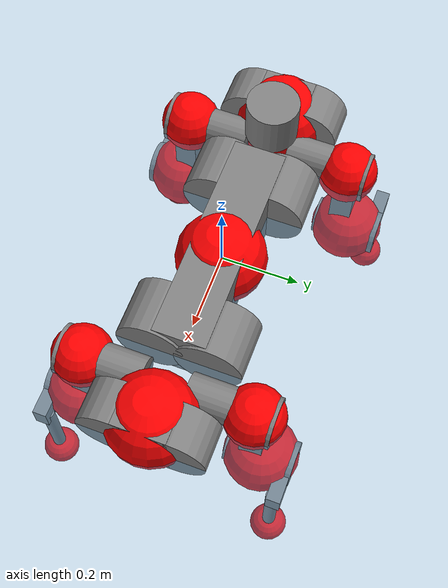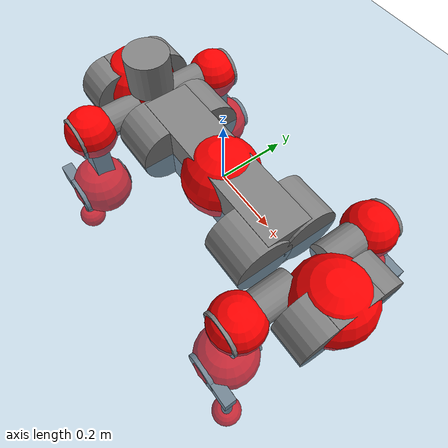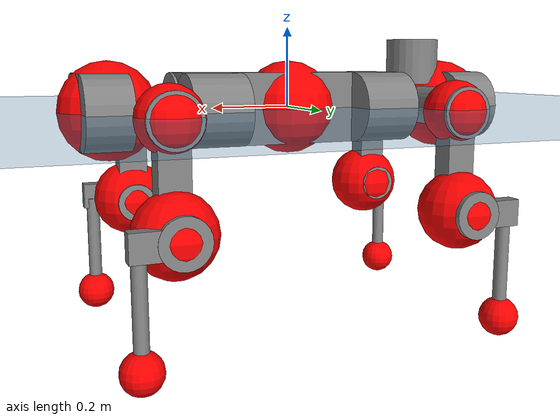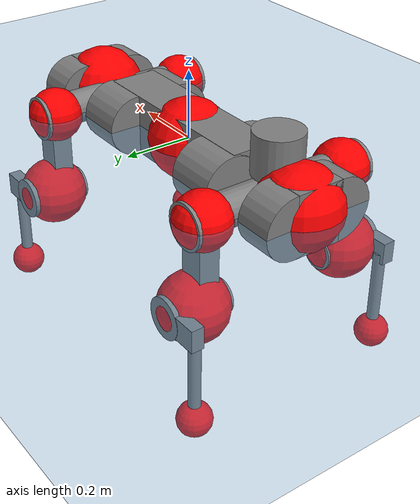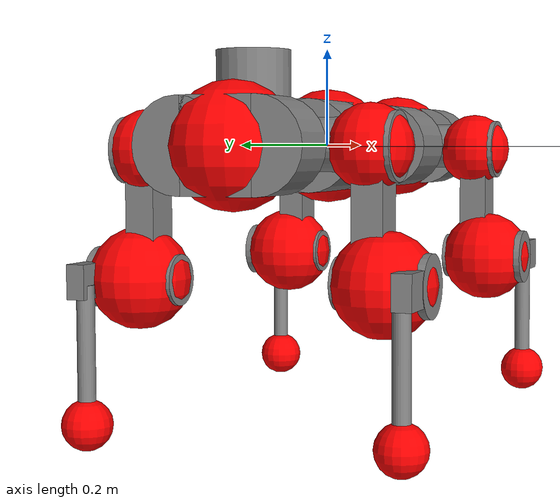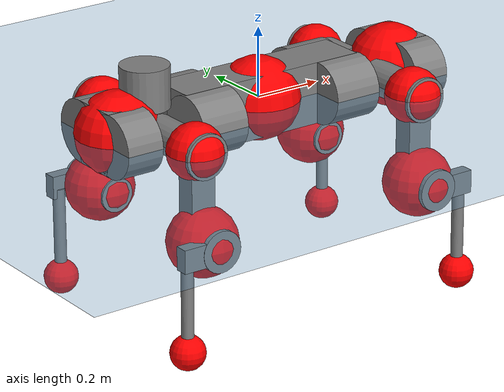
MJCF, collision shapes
<mujoco model="anymal_c">
  <compiler angle="radian" assetdir="assets" balanceinertia="true" inertiafromgeom="false"/>

  <option timestep="0.005" density="1.2" viscosity="2e-05"/>

  <size nkey="1"/>

  <visual>
    <quality shadowsize="8192"/>
    <map shadowclip="0.5"/>
  </visual>

  <default>
    <default class="/">
      <material specular="0" shininess="0.25"/>
      <geom contype="0" conaffinity="0" group="1" solref="-1000 -80"/>
      <site size="0.01 0.005 0.005" group="5"/>
      <general forcelimited="true" forcerange="-80 80" biastype="affine" gainprm="80" biasprm="0 -80 -2"/>
      <default class="anymal_c">
        <joint armature="0.01" damping="0.01" frictionloss="0.1"/>
        <default class="visual">
          <geom type="mesh" group="2"/>
          <default class="visual_zflip"/>
        </default>
        <default class="collision">
          <geom type="cylinder" group="3"/>
          <default class="foot">
            <geom size="0.03 0 0" type="sphere" condim="6" priority="1" friction="0.8 0.02 0.01" solimp="0.015 1 0.03"/>
          </default>
        </default>
      </default>
      <default class="reward_collision_sphere">
        <geom group="5" rgba="1 0 0 1"/>
      </default>
    </default>
  </default>

  <asset>
    <texture type="skybox" colorspace="auto" name="//unnamed_texture_0" builtin="gradient" rgb1="0.95 0.95 0.95" rgb2="0.95 0.95 0.95" width="100" height="600"/>
    <texture type="2d" colorspace="auto" name="texplane" builtin="checker" rgb1="0.345 0.575 0.748" rgb2="0.345 0.575 0.748" markrgb="1 1 1" width="512" height="512"/>
    <texture type="2d" colorspace="linear" name="base" file="base.png"/>
    <texture type="2d" colorspace="linear" name="top_shell" file="top_shell.png"/>
    <texture type="2d" colorspace="linear" name="bottom_shell" file="bottom_shell.png"/>
    <texture type="2d" colorspace="linear" name="remote" file="remote.png"/>
    <texture type="2d" colorspace="linear" name="hatch" file="hatch.png"/>
    <texture type="2d" colorspace="linear" name="handle" file="handle.png"/>
    <texture type="2d" colorspace="linear" name="face" file="face.png"/>
    <texture type="2d" colorspace="linear" name="battery" file="battery.png"/>
    <texture type="2d" colorspace="linear" name="lidar_cage" file="lidar_cage.png"/>
    <texture type="2d" colorspace="linear" name="depth_camera" file="depth_camera.png"/>
    <texture type="2d" colorspace="linear" name="wide_angle_camera" file="wide_angle_camera.png"/>
    <texture type="2d" colorspace="linear" name="lidar" file="lidar.png"/>
    <texture type="2d" colorspace="linear" name="drive" file="drive.png"/>
    <texture type="2d" colorspace="linear" name="hip_l" file="hip_l.png"/>
    <texture type="2d" colorspace="linear" name="shank_l" file="shank_l.png"/>
    <texture type="2d" colorspace="linear" name="foot" file="foot.png"/>
    <texture type="2d" colorspace="linear" name="thigh" file="thigh.png"/>
    <texture type="2d" colorspace="linear" name="shank_r" file="shank_r.png"/>
    <texture type="2d" colorspace="linear" name="hip_r" file="hip_r.png"/>
    <material name="MatPlane" class="/" texture="texplane" texuniform="true" texrepeat="2 2" specular="0.9" shininess="0.5"/>
    <material name="black_plastic" class="/" rgba="0.007 0.007 0.007 1"/>
    <material name="green" class="/" rgba="0.052 0.178 0.033 1"/>
    <material name="red" class="/" rgba="0.178 0.006 0.005 1"/>
    <material name="yellow" class="/" rgba="0.178 0.119 0.006 1"/>
    <material name="lwl" class="/" rgba="0.8 0.8 0.8 1"/>
    <material name="base" class="/" texture="base"/>
    <material name="top_shell" class="/" texture="top_shell"/>
    <material name="bottom_shell" class="/" texture="bottom_shell"/>
    <material name="hip_l" class="/" texture="hip_l"/>
    <material name="thigh" class="/" texture="thigh"/>
    <material name="shank_l" class="/" texture="shank_l"/>
    <material name="foot" class="/" texture="foot"/>
    <material name="hip_r" class="/" texture="hip_r"/>
    <material name="shank" class="/" texture="shank_r"/>
    <material name="hatch" class="/" texture="hatch"/>
    <material name="remote" class="/" texture="remote"/>
    <material name="handle" class="/" texture="handle"/>
    <material name="face" class="/" texture="face"/>
    <material name="depth_camera" class="/" texture="depth_camera"/>
    <material name="wide_angle_camera" class="/" texture="wide_angle_camera"/>
    <material name="battery" class="/" texture="battery"/>
    <material name="lidar_cage" class="/" texture="lidar_cage"/>
    <material name="lidar" class="/" texture="lidar"/>
    <material name="drive" class="/" texture="drive"/>
    <mesh name="base_0" class="/" file="base_0.obj"/>
    <mesh name="base_1" class="/" file="base_1.obj"/>
    <mesh name="base_2" class="/" file="base_2.obj"/>
    <mesh name="base_3" class="/" file="base_3.obj"/>
    <mesh name="base_4" class="/" file="base_4.obj"/>
    <mesh name="base_5" class="/" file="base_5.obj"/>
    <mesh name="top_shell" class="/" file="top_shell.obj"/>
    <mesh name="bottom_shell" class="/" file="bottom_shell.obj"/>
    <mesh name="remote" class="/" file="remote.obj"/>
    <mesh name="handle" class="/" file="handle.obj"/>
    <mesh name="face" class="/" file="face.obj"/>
    <mesh name="wide_angle_camera" class="/" file="wide_angle_camera.obj"/>
    <mesh name="depth_camera" class="/" file="depth_camera.obj"/>
    <mesh name="battery" class="/" file="battery.obj"/>
    <mesh name="lidar_cage" class="/" file="lidar_cage.obj"/>
    <mesh name="lidar" class="/" file="lidar.obj"/>
    <mesh name="drive" class="/" file="drive.obj"/>
    <mesh name="hip_l" class="/" file="hip_l.obj"/>
    <mesh name="thigh" class="/" file="thigh.obj"/>
    <mesh name="shank_l" class="/" file="shank_l.obj"/>
    <mesh name="foot" class="/" file="foot.obj"/>
    <mesh name="hip_r" class="/" file="hip_r.obj"/>
    <mesh name="hatch" class="/" file="hatch.obj"/>
    <mesh name="shank_r" class="/" file="shank_r.obj"/>
  </asset>

  <worldbody>
    <geom name="floor" class="/" size="100 100 0.125" type="plane" group="0" material="MatPlane"/>
    <light name="toplight_shadow" class="/" pos="0 0 5" dir="0.0990148 0.0990148 -0.990148" type="directional" ambient="0.04 0.04 0.04" diffuse="0.55 0.55 0.55" specular="0.12 0.12 0.12"/>
    <light name="toplight_fill" class="/" pos="0 0 5" dir="0.0990148 0.0990148 -0.990148" type="directional" castshadow="false" ambient="0.04 0.04 0.04" diffuse="0.3 0.3 0.3" specular="0.08 0.08 0.08"/>
    <body name="trunk" childclass="anymal_c" pos="-0.00238697 -0.00266238 -0.000759951" quat="0.999999 -0.00113253 0.000224097 -0.000808521">
      <inertial pos="0.00037946 0.00108699 0.0434409" quat="0.5026 0.500387 0.4977 0.499299" mass="18.0543" diaginertia="0.696553 0.856657 0.107147"/>
      <joint name="//unnamed_joint_0" type="free" armature="0" damping="0" frictionloss="0"/>
      <geom name="//unnamed_geom_1" class="visual" material="green" mesh="base_0"/>
      <geom name="//unnamed_geom_2" class="visual" material="yellow" mesh="base_1"/>
      <geom name="//unnamed_geom_3" class="visual" material="red" mesh="base_2"/>
      <geom name="//unnamed_geom_4" class="visual" material="black_plastic" mesh="base_3"/>
      <geom name="//unnamed_geom_5" class="visual" material="lwl" mesh="base_4"/>
      <geom name="//unnamed_geom_6" class="visual" material="base" mesh="base_5"/>
      <geom name="trunk_1" class="collision" size="0.284986 0.0687896 0.0884438" type="box"/>
      <geom name="trunk_2" class="collision" size="0.0884438 0.0712464" pos="0.221252 0.0747574 0" quat="0.707107 0 0.707107 0"/>
      <geom name="trunk_3" class="collision" size="0.0884438 0.0712464" pos="-0.221252 0.0747574 0" quat="0.707107 0 0.707107 0"/>
      <geom name="trunk_4" class="collision" size="0.0884438 0.0712464" pos="0.221252 -0.0747574 0" quat="0.707107 0 0.707107 0"/>
      <geom name="trunk_5" class="collision" size="0.0884438 0.0712464" pos="-0.221252 -0.0747574 0" quat="0.707107 0 0.707107 0"/>
      <geom name="//unnamed_geom_12" class="visual" material="top_shell" mesh="top_shell"/>
      <geom name="//unnamed_geom_13" class="visual" material="bottom_shell" mesh="bottom_shell"/>
      <geom name="//unnamed_geom_14" class="visual" material="remote" mesh="remote"/>
      <geom name="//unnamed_geom_15" class="visual" material="handle" mesh="handle"/>
      <geom name="//unnamed_geom_16" class="visual" pos="0.42165 0 0" quat="1 0 0 0" material="face" mesh="face"/>
      <geom name="trunk_6" class="collision" size="0.054049 0.0687896 0.0884438" pos="0.477598 0 0" type="box"/>
      <geom name="//unnamed_geom_18" class="collision" size="0.0884438 0.054049" pos="0.477598 0.0747574 0" quat="0.707107 0 0.707107 0"/>
      <geom name="//unnamed_geom_19" class="collision" size="0.0884438 0.054049" pos="0.477598 -0.0747574 0" quat="0.707107 0 0.707107 0"/>
      <geom name="//unnamed_geom_20" class="visual" pos="0.469606 0 -0.0240242" quat="0.965926 0 0.258819 0" material="depth_camera" mesh="depth_camera"/>
      <geom name="//unnamed_geom_21" class="visual" pos="0.521849 0 0.0129178" material="wide_angle_camera" mesh="wide_angle_camera"/>
      <geom name="//unnamed_geom_22" class="visual_zflip" pos="-0.42165 0 0" quat="0 0 0 1" material="face" mesh="face"/>
      <geom name="trunk_7" class="collision" size="0.054049 0.0687896 0.0884438" pos="-0.477598 0 0" quat="0 0 0 1" type="box"/>
      <geom name="//unnamed_geom_24" class="collision" size="0.0884438 0.054049" pos="-0.477598 -0.0747574 0" quat="0 -0.707107 0 0.707107"/>
      <geom name="//unnamed_geom_25" class="collision" size="0.0884438 0.054049" pos="-0.477598 0.0747574 0" quat="0 -0.707107 0 0.707107"/>
      <geom name="//unnamed_geom_26" class="visual" pos="-0.469606 0 -0.0240242" quat="0 -0.258819 0 0.965926" material="depth_camera" mesh="depth_camera"/>
      <geom name="//unnamed_geom_27" class="visual_zflip" pos="-0.521849 0 0.0129178" quat="0 0 0 1" material="wide_angle_camera" mesh="wide_angle_camera"/>
      <geom name="//unnamed_geom_28" class="visual" material="battery" mesh="battery"/>
      <geom name="//unnamed_geom_29" class="visual" pos="0 0.0823155 0.0262406" quat="0.683013 -0.183013 0.183013 0.683013" material="depth_camera" mesh="depth_camera"/>
      <geom name="//unnamed_geom_30" class="visual" pos="0 -0.0823155 0.0262406" quat="0.683013 0.183013 0.183013 -0.683013" material="depth_camera" mesh="depth_camera"/>
      <geom name="//unnamed_geom_31" class="visual" pos="-0.370279 0 0.0634243" quat="1 0 0 0" material="lidar_cage" mesh="lidar_cage"/>
      <geom name="trunk_8" class="collision" size="0.0687896 0.0589625" pos="-0.370279 0 0.115199"/>
      <geom name="//unnamed_geom_33" class="visual" pos="-0.370279 1.99243e-05 0.122707" quat="0.707107 0 0 -0.707107" material="lidar" mesh="lidar"/>
      <geom name="//unnamed_geom_34" class="visual" pos="0.305073 0.110995 3.5371e-09" quat="0.258819 0.965926 0 0" material="drive" mesh="drive"/>
      <geom name="//unnamed_geom_35" class="visual" pos="0.305073 -0.110995 -3.5371e-09" quat="0.258819 -0.965926 0 0" material="drive" mesh="drive"/>
      <geom name="//unnamed_geom_36" class="visual" pos="-0.305073 0.110995 -3.5371e-09" quat="0 0 0.965926 -0.258819" material="drive" mesh="drive"/>
      <geom name="//unnamed_geom_37" class="visual" pos="-0.305073 -0.110995 3.5371e-09" quat="0 0 -0.965926 -0.258819" material="drive" mesh="drive"/>
      <geom name="//unnamed_geom_38" class="visual" pos="0.118001 0 0.0629928" quat="1 0 0 0" material="hatch" mesh="hatch"/>
      <geom name="//unnamed_geom_39" class="reward_collision_sphere" size="0.117925"/>
      <geom name="//unnamed_geom_40" class="reward_collision_sphere" size="0.117925" pos="0.457762 0 0"/>
      <geom name="//unnamed_geom_41" class="reward_collision_sphere" size="0.117925" pos="-0.457762 0 0"/>
      <site name="imu" pos="0.254964 0.0114189 0.0417339" size="0.00982709"/>
      <camera name="track" pos="0 -2.13593 0" quat="0.707107 0.707107 0 0" mode="trackcom"/>
      <camera name="ego_camera" pos="0.457762 0 -0.0345166" quat="-0.5 -0.5 0.5 0.5"/>
      <body name="LF_HIP" pos="0.303913 0.109377 0.00161273" quat="0.257863 0.966182 -0.000349689 -7.85869e-05">
        <inertial pos="0.0555895 -0.0177621 -0.00885959" quat="-0.12823 0.709617 -0.134603 0.67962" mass="2.76516" diaginertia="0.00668719 0.00684179 0.00166844"/>
        <joint name="LF_HAA" pos="0 0 0" axis="0.999996 7.72339e-05 0.00279786" range="-0.712439 0.434675" armature="0.0112166" damping="0" frictionloss="0.103276"/>
        <geom name="//unnamed_geom_42" class="visual" pos="0 0.000208072 -3.41756e-05" quat="0.258819 -0.965926 0 0" material="hip_l" mesh="hip_l"/>
        <geom name="//unnamed_geom_43" class="visual" pos="0.0609332 -0.0744284 -0.0414546" quat="0.183013 -0.683013 0.683013 0.183013" material="drive" mesh="drive"/>
        <geom name="//unnamed_geom_44" class="collision" size="0.0491354 0.0687896" pos="0.0609332 -0.0127726 -0.00595843" quat="-0.353553 -0.612372 0.612372 -0.353553"/>
        <body name="LF_THIGH" pos="0.0616 -0.0792652 -0.0357074" quat="0.182912 -0.683027 0.683024 0.183019">
          <inertial pos="0.0338533 8.86665e-05 -0.209246" quat="0.993055 -0.00342218 -0.0807357 0.08551" mass="2.94134" diaginertia="0.0333387 0.0414228 0.00198985"/>
          <joint name="LF_HFE" pos="0 0 0" axis="0.999966 -0.00755048 -0.00327256" stiffness="0.00868741" range="-3.19969 3.19387" armature="0.0112466" damping="0" frictionloss="0.106334"/>
          <geom name="//unnamed_geom_45" class="visual" pos="-0.00100902 -1.58997e-06 0" quat="0.707107 0 0 -0.707107" material="thigh" mesh="thigh"/>
          <geom name="//unnamed_geom_46" class="collision" size="0.0638761 0.0393084" pos="0.0406899 0 0" quat="0.5 0.5 -0.5 -0.5"/>
          <geom name="//unnamed_geom_47" class="collision" size="0.0368516 0.0294813 0.138871" pos="0.0305175 0 -0.121942" quat="0.707107 0 0 -0.707107" type="box"/>
          <geom name="//unnamed_geom_48" class="visual" pos="0.10203 0 -0.245931" quat="1 0 0 0" material="drive" mesh="drive"/>
          <geom name="//unnamed_geom_49" class="collision" size="0.0491354 0.0687896" pos="0.0308226 0 -0.245931" quat="0.707107 0 0.707107 0"/>
          <geom name="//unnamed_geom_50" class="reward_collision_sphere" size="0.0786167" pos="0.0254312 0 0"/>
          <body name="LF_SHANK" pos="0.102208 -0.00107384 -0.246383" quat="0.999999 0.000716381 -0.000689078 -0.000653962">
            <inertial pos="0.00776098 -0.0635338 -0.0724175" quat="0.993954 -0.104715 0.000675979 -0.0330028" mass="0.555416" diaginertia="0.0110301 0.0130836 0.000517486"/>
            <joint name="LF_KFE" pos="0 0 0" axis="0.999998 0.00185729 0.00111543" range="-3.12723 3.08356" armature="0.00878046" damping="0.00960161" frictionloss="0.103438"/>
            <geom name="//unnamed_geom_51" class="visual" pos="-0.000329018 -0.00175434 0" quat="0.707107 0 0 -0.707107" material="shank_l" mesh="shank_l"/>
            <geom name="LF_kfe_act" class="collision" size="0.0589625 0.0196542" pos="0.020345 0 0" quat="0.5 0.5 -0.5 -0.5"/>
            <geom name="//unnamed_geom_53" class="collision" size="0.0565048 0.0331664 0.0186715" pos="0.020345 -0.0614068 0" quat="0.5 0.5 -0.5 -0.5" type="box"/>
            <geom name="//unnamed_geom_54" class="visual" pos="0.0132752 -0.0944927 -0.291639" quat="0.382683 0 0 -0.92388" material="foot" mesh="foot"/>
            <geom name="LF_calf" class="collision" size="0.0171974 0.13881" pos="0.0132751 -0.0939273 -0.14582" quat="0.707107 0 0 -0.707107"/>
            <geom name="LF_foot" class="foot" size="0.0330094" pos="0.0132751 -0.0939273 -0.272224" quat="0.707107 0 0 -0.707107"/>
            <geom name="//unnamed_geom_57" class="reward_collision_sphere" size="0.0982709" pos="-0.0508624 0 0"/>
            <geom name="//unnamed_geom_58" class="reward_collision_sphere" size="0.0491354" pos="0.0132751 -0.0939273 -0.272224"/>
            <site name="LF_foot" class="foot" pos="0.0132751 -0.0939273 -0.272224" quat="0.707107 0 0 -0.707107" size="0.00982709"/>
          </body>
        </body>
      </body>
      <body name="RF_HIP" pos="0.305387 -0.108853 0.000974938" quat="0.25868 -0.965963 -0.000162932 0.000380021">
        <inertial pos="0.0605644 0.0166625 -0.00744049" quat="0.135227 0.679074 0.128011 0.71006" mass="2.77994" diaginertia="0.00668095 0.00713403 0.00157715"/>
        <joint name="RF_HAA" pos="0 0 0" axis="1 0.000258497 -0.000893672" range="-0.451819 0.732564" armature="0.00878053" damping="0.0107404" frictionloss="0.109695"/>
        <geom name="//unnamed_geom_59" class="visual" pos="0 -0.00020807 -3.41755e-05" quat="0.258819 0.965926 0 0" material="hip_r" mesh="hip_r"/>
        <geom name="//unnamed_geom_60" class="visual" pos="0.0609332 0.0744284 -0.0414546" quat="0.183013 0.683013 0.683013 -0.183013" material="drive" mesh="drive"/>
        <geom name="//unnamed_geom_61" class="collision" size="0.0491354 0.0687896" pos="0.0609332 0.0127726 -0.00595843" quat="-0.353553 0.612372 0.612372 0.353553"/>
        <body name="RF_THIGH" pos="0.0598543 0.0773414 -0.0338225" quat="0.182542 0.682951 0.682897 -0.18414">
          <inertial pos="0.0287251 -0.00227494 -0.211321" quat="0.992401 -0.00862485 -0.0845931 0.0889374" mass="2.82308" diaginertia="0.0329071 0.0406702 0.00191946"/>
          <joint name="RF_HFE" pos="0 0 0" axis="0.999999 -0.00123348 0.000183756" stiffness="0.00836449" range="-3.14117 3.12896" armature="0.00988261" damping="0.0114338" frictionloss="0.103553"/>
          <geom name="//unnamed_geom_62" class="visual" pos="-0.00100902 -1.58997e-06 0" quat="0.707107 0 0 -0.707107" material="thigh" mesh="thigh"/>
          <geom name="//unnamed_geom_63" class="collision" size="0.0638761 0.0393084" pos="0.0406899 0 0" quat="0.5 0.5 0.5 0.5"/>
          <geom name="//unnamed_geom_64" class="collision" size="0.0368516 0.0294813 0.138871" pos="0.0305175 0 -0.121942" quat="0.707107 0 0 0.707107" type="box"/>
          <geom name="//unnamed_geom_65" class="visual" pos="0.10203 0 -0.245931" quat="1 0 0 0" material="drive" mesh="drive"/>
          <geom name="//unnamed_geom_66" class="collision" size="0.0491354 0.0687896" pos="0.0308226 0 -0.245931" quat="0.707107 0 0.707107 0"/>
          <geom name="//unnamed_geom_67" class="reward_collision_sphere" size="0.0786167" pos="0.0254312 0 0"/>
          <body name="RF_SHANK" pos="0.104268 -0.000533731 -0.244753" quat="1 -2.23342e-06 -3.29345e-05 -9.32103e-06">
            <inertial pos="0.00770044 0.0657433 -0.0690716" quat="0.992882 0.116846 -0.00532712 0.0224599" mass="0.57504" diaginertia="0.0118597 0.0128342 0.00055453"/>
            <joint name="RF_KFE" pos="0 0 0" axis="0.9999 0.00459707 -0.013408" range="-3.12062 3.15524" armature="0.0096666" damping="0.0182536" frictionloss="0.0955594"/>
            <geom name="//unnamed_geom_68" class="visual" pos="-0.000329016 0.00175434 0" quat="0.707107 0 0 0.707107" material="shank" mesh="shank_r"/>
            <geom name="RF_kfe_act" class="collision" size="0.0589625 0.0196542" pos="0.020345 0 0" quat="0.5 0.5 0.5 0.5"/>
            <geom name="//unnamed_geom_70" class="collision" size="0.0565048 0.0331664 0.0186715" pos="0.020345 0.0614068 0" quat="0.5 0.5 0.5 0.5" type="box"/>
            <geom name="//unnamed_geom_71" class="visual" pos="0.013275 0.0944927 -0.291639" quat="0.382683 0 0 0.92388" material="foot" mesh="foot"/>
            <geom name="RF_calf" class="collision" size="0.0171974 0.13881" pos="0.0132751 0.0939273 -0.14582" quat="0.707107 0 0 0.707107"/>
            <geom name="RF_foot" class="foot" size="0.0279913" pos="0.0132751 0.0939273 -0.272224" quat="0.707107 0 0 0.707107"/>
            <geom name="//unnamed_geom_74" class="reward_collision_sphere" size="0.0982709" pos="-0.0508624 0 0"/>
            <geom name="//unnamed_geom_75" class="reward_collision_sphere" size="0.0491354" pos="0.0132751 0.0939273 -0.272224"/>
            <site name="RF_foot" class="foot" pos="0.0132751 0.0939273 -0.272224" quat="0.707107 0 0 0.707107" size="0.00982709"/>
          </body>
        </body>
      </body>
      <body name="LH_HIP" pos="-0.303675 0.110285 0.00245857" quat="-0.00021491 0.000464924 0.966091 -0.258201">
        <inertial pos="0.0601239 0.016923 -0.00800263" quat="0.135111 0.679579 0.128004 0.709601" mass="2.61126" diaginertia="0.00636417 0.00706418 0.00158278"/>
        <joint name="LH_HAA" pos="0 0 0" axis="0.999982 -0.00565045 0.00200851" stiffness="0.00387786" range="-0.474342 0.700461" armature="0.00986611" damping="0.00977997" frictionloss="0.10173"/>
        <geom name="//unnamed_geom_76" class="visual" pos="0 -0.00020807 -3.41755e-05" quat="-0.258819 -0.965926 0 0" material="hip_r" mesh="hip_r"/>
        <geom name="//unnamed_geom_77" class="visual" pos="0.0609332 0.0744284 -0.0414546" quat="0.183013 0.683013 0.683013 -0.183013" material="drive" mesh="drive"/>
        <geom name="//unnamed_geom_78" class="collision" size="0.0491354 0.0687896" pos="0.0609332 0.0127726 -0.00595843" quat="-0.353553 0.612372 0.612372 0.353553"/>
        <body name="LH_THIGH" pos="0.0578778 0.0790385 -0.0335959" quat="0.182523 0.682654 0.683688 -0.182316">
          <inertial pos="0.0309037 0.000906733 -0.210803" quat="0.991912 0.00601301 -0.0883216 0.0909647" mass="2.81202" diaginertia="0.0328495 0.0400728 0.00200741"/>
          <joint name="LH_HFE" pos="0 0 0" axis="0.999996 0.00198566 0.00202289" stiffness="4.31675e-05" range="-3.12027 3.12805" armature="0.00869021" damping="0" frictionloss="0.096436"/>
          <geom name="//unnamed_geom_79" class="visual" pos="-0.00100902 -1.58997e-06 0" quat="0.707107 0 0 -0.707107" material="thigh" mesh="thigh"/>
          <geom name="//unnamed_geom_80" class="collision" size="0.0638761 0.0393084" pos="0.0406899 0 0" quat="0.5 0.5 -0.5 -0.5"/>
          <geom name="//unnamed_geom_81" class="collision" size="0.0368516 0.0294813 0.138871" pos="0.0305175 0 -0.121942" quat="0.707107 0 0 -0.707107" type="box"/>
          <geom name="//unnamed_geom_82" class="visual" pos="0.10203 0 -0.245931" quat="1 0 0 0" material="drive" mesh="drive"/>
          <geom name="//unnamed_geom_83" class="collision" size="0.0491354 0.0687896" pos="0.0308226 0 -0.245931" quat="0.707107 0 0.707107 0"/>
          <geom name="//unnamed_geom_84" class="reward_collision_sphere" size="0.0786167" pos="0.0254312 0 0"/>
          <body name="LH_SHANK" pos="0.102291 -0.00137804 -0.245079" quat="1 -1.05495e-06 -1.96489e-06 -1.4113e-06">
            <inertial pos="0.0056971 0.0654807 -0.0674391" quat="0.993089 0.114544 -0.000253122 0.0255613" mass="0.556903" diaginertia="0.0111103 0.0129206 0.000539104"/>
            <joint name="LH_KFE" pos="0 0 0" axis="1 -0.000718014 0.000122762" stiffness="0.00297822" range="-3.13608 3.14127" armature="0.00933986" damping="0" frictionloss="0.0962134"/>
            <geom name="//unnamed_geom_85" class="visual" pos="-0.000329016 0.00175434 0" quat="-0.707107 0 0 -0.707107" material="shank" mesh="shank_r"/>
            <geom name="LH_kfe_act" class="collision" size="0.0589625 0.0196542" pos="0.020345 0 0" quat="0.5 0.5 -0.5 -0.5"/>
            <geom name="//unnamed_geom_87" class="collision" size="0.0565048 0.0331664 0.0186715" pos="0.020345 0.0614068 0" quat="0.5 0.5 -0.5 -0.5" type="box"/>
            <geom name="//unnamed_geom_88" class="visual" pos="0.013275 0.0944927 -0.291639" quat="-0.382683 0 0 -0.92388" material="foot" mesh="foot"/>
            <geom name="LH_calf" class="collision" size="0.0171974 0.13881" pos="0.0132751 0.0939273 -0.14582" quat="0.707107 0 0 -0.707107"/>
            <geom name="LH_foot" class="foot" size="0.0332378" pos="0.0132751 0.0939273 -0.272224" quat="0.707107 0 0 -0.707107"/>
            <geom name="//unnamed_geom_91" class="reward_collision_sphere" size="0.0982709" pos="-0.0508624 0 0"/>
            <geom name="//unnamed_geom_92" class="reward_collision_sphere" size="0.0491354" pos="0.0132751 0.0939273 -0.272224"/>
            <site name="LH_foot" class="foot" pos="0.0132751 0.0939273 -0.272224" quat="0.707107 0 0 -0.707107" size="0.00982709"/>
          </body>
        </body>
      </body>
      <body name="RH_HIP" pos="-0.304823 -0.113208 0.00294441" quat="0.00120017 -8.5006e-05 -0.966133 -0.258043">
        <inertial pos="0.0577538 -0.0136195 -0.00754348" quat="-0.126528 0.710357 -0.122306 0.681488" mass="2.62782" diaginertia="0.00650921 0.00699326 0.00154773"/>
        <joint name="RH_HAA" pos="0 0 0" axis="0.999984 -0.00125132 0.00544537" stiffness="0.00853972" range="-0.744271 0.503614" armature="0.011145" damping="0.0184093" frictionloss="0.0847394"/>
        <geom name="//unnamed_geom_93" class="visual" pos="0 0.000208072 -3.41756e-05" quat="-0.258819 0.965926 0 0" material="hip_l" mesh="hip_l"/>
        <geom name="//unnamed_geom_94" class="visual" pos="0.0609332 -0.0744284 -0.0414546" quat="-0.183013 0.683013 -0.683013 -0.183013" material="drive" mesh="drive"/>
        <geom name="//unnamed_geom_95" class="collision" size="0.0491354 0.0687896" pos="0.0609332 -0.0127726 -0.00595843" quat="0.353553 0.612372 -0.612372 0.353553"/>
        <body name="RH_THIGH" pos="0.0599301 -0.0768706 -0.0388536" quat="-0.183186 0.683343 -0.682651 -0.182958">
          <inertial pos="0.0315027 -0.00181905 -0.212105" quat="0.993123 -0.00524514 -0.080712 0.0846419" mass="2.83675" diaginertia="0.0323004 0.0410936 0.00192133"/>
          <joint name="RH_HFE" pos="0 0 0" axis="1 0.000601149 -0.000517448" range="-3.19329 3.19162" armature="0.01077" damping="0.0127664" frictionloss="0.100459"/>
          <geom name="//unnamed_geom_96" class="visual" pos="-0.00100902 -1.58997e-06 0" quat="0.707107 0 0 -0.707107" material="thigh" mesh="thigh"/>
          <geom name="//unnamed_geom_97" class="collision" size="0.0638761 0.0393084" pos="0.0406899 0 0" quat="0.5 0.5 0.5 0.5"/>
          <geom name="//unnamed_geom_98" class="collision" size="0.0368516 0.0294813 0.138871" pos="0.0305175 0 -0.121942" quat="0.707107 0 0 0.707107" type="box"/>
          <geom name="//unnamed_geom_99" class="visual" pos="0.10203 0 -0.245931" quat="1 0 0 0" material="drive" mesh="drive"/>
          <geom name="//unnamed_geom_100" class="collision" size="0.0491354 0.0687896" pos="0.0308226 0 -0.245931" quat="0.707107 0 0.707107 0"/>
          <geom name="//unnamed_geom_101" class="reward_collision_sphere" size="0.0786167" pos="0.0254312 0 0"/>
          <body name="RH_SHANK" pos="0.0999811 0.00322182 -0.246579" quat="1 -6.39645e-05 0.000398729 5.29589e-05">
            <inertial pos="0.00752531 -0.0652806 -0.0676752" quat="0.992989 -0.114668 0.000453935 -0.0286872" mass="0.556643" diaginertia="0.011024 0.0120449 0.000536929"/>
            <joint name="RH_KFE" pos="0 0 0" axis="0.999996 -0.000940198 0.00249462" range="-3.07187 3.1735" armature="0.00830612" damping="0.00234072" frictionloss="0.0966916"/>
            <geom name="//unnamed_geom_102" class="visual" pos="-0.000329018 -0.00175434 0" quat="0.707107 0 0 -0.707107" material="shank_l" mesh="shank_l"/>
            <geom name="RH_kfe_act" class="collision" size="0.0589625 0.0196542" pos="0.020345 0 0" quat="0.5 0.5 0.5 0.5"/>
            <geom name="//unnamed_geom_104" class="collision" size="0.0565048 0.0331664 0.0186715" pos="0.020345 -0.0614068 0" quat="0.5 0.5 0.5 0.5" type="box"/>
            <geom name="//unnamed_geom_105" class="visual" pos="0.0132752 -0.0944927 -0.291639" quat="0.382683 0 0 -0.92388" material="foot" mesh="foot"/>
            <geom name="RH_calf" class="collision" size="0.0171974 0.13881" pos="0.0132751 -0.0939273 -0.14582" quat="0.707107 0 0 0.707107"/>
            <geom name="RH_foot" class="foot" size="0.0282543" pos="0.0132751 -0.0939273 -0.272224" quat="0.707107 0 0 0.707107"/>
            <geom name="//unnamed_geom_108" class="reward_collision_sphere" size="0.0982709" pos="-0.0508624 0 0"/>
            <geom name="//unnamed_geom_109" class="reward_collision_sphere" size="0.0491354" pos="0.0132751 -0.0939273 -0.272224"/>
            <site name="RH_foot" class="foot" pos="0.0132751 -0.0939273 -0.272224" quat="0.707107 0 0 0.707107" size="0.00982709"/>
          </body>
        </body>
      </body>
    </body>
  </worldbody>

  <contact>
    <pair class="/" geom1="floor" geom2="LF_foot" name="//unnamed_contact_0"/>
    <pair class="/" geom1="floor" geom2="RF_foot" name="//unnamed_contact_1"/>
    <pair class="/" geom1="floor" geom2="LH_foot" name="//unnamed_contact_2"/>
    <pair class="/" geom1="floor" geom2="RH_foot" name="//unnamed_contact_3"/>
  </contact>

  <actuator>
    <general name="LF_HAA" class="/" joint="LF_HAA" forcerange="-78.2349 78.2349" gainprm="78.789" biasprm="0 -78.789 -1.91551"/>
    <general name="LF_HFE" class="/" joint="LF_HFE" forcerange="-73.8365 73.8365" gainprm="78.789" biasprm="0 -78.789 -1.91551"/>
    <general name="LF_KFE" class="/" joint="LF_KFE" forcerange="-77.6879 77.6879" gainprm="78.789" biasprm="0 -78.789 -1.91551"/>
    <general name="RF_HAA" class="/" joint="RF_HAA" forcerange="-84.8708 84.8708" gainprm="78.789" biasprm="0 -78.789 -1.91551"/>
    <general name="RF_HFE" class="/" joint="RF_HFE" forcerange="-80.4198 80.4198" gainprm="78.789" biasprm="0 -78.789 -1.91551"/>
    <general name="RF_KFE" class="/" joint="RF_KFE" forcerange="-70.6281 70.6281" gainprm="78.789" biasprm="0 -78.789 -1.91551"/>
    <general name="LH_HAA" class="/" joint="LH_HAA" forcerange="-80.4465 80.4465" gainprm="78.789" biasprm="0 -78.789 -1.91551"/>
    <general name="LH_HFE" class="/" joint="LH_HFE" forcerange="-80.7059 80.7059" gainprm="78.789" biasprm="0 -78.789 -1.91551"/>
    <general name="LH_KFE" class="/" joint="LH_KFE" forcerange="-77.2601 77.2601" gainprm="78.789" biasprm="0 -78.789 -1.91551"/>
    <general name="RH_HAA" class="/" joint="RH_HAA" forcerange="-75.5165 75.5165" gainprm="78.789" biasprm="0 -78.789 -1.91551"/>
    <general name="RH_HFE" class="/" joint="RH_HFE" forcerange="-79.283 79.283" gainprm="78.789" biasprm="0 -78.789 -1.91551"/>
    <general name="RH_KFE" class="/" joint="RH_KFE" forcerange="-86.5026 86.5026" gainprm="78.789" biasprm="0 -78.789 -1.91551"/>
  </actuator>

  <sensor>
    <gyro site="imu" name="imu_angular_velocity"/>
    <velocimeter site="imu" name="imu_linear_velocity"/>
    <framelinvel objtype="site" objname="LF_foot" name="LF_foot_global_linear_velocity"/>
    <framelinvel objtype="site" objname="RF_foot" name="RF_foot_global_linear_velocity"/>
    <framelinvel objtype="site" objname="LH_foot" name="LH_foot_global_linear_velocity"/>
    <framelinvel objtype="site" objname="RH_foot" name="RH_foot_global_linear_velocity"/>
  </sensor>

  <keyframe>
    <key name="home" qpos="0 0 0.55 1 0 0 0 0 0.4 -0.8 0 -0.4 0.8 0 -0.4 0.8 0 0.4 -0.8"/>
  </keyframe>
</mujoco>
